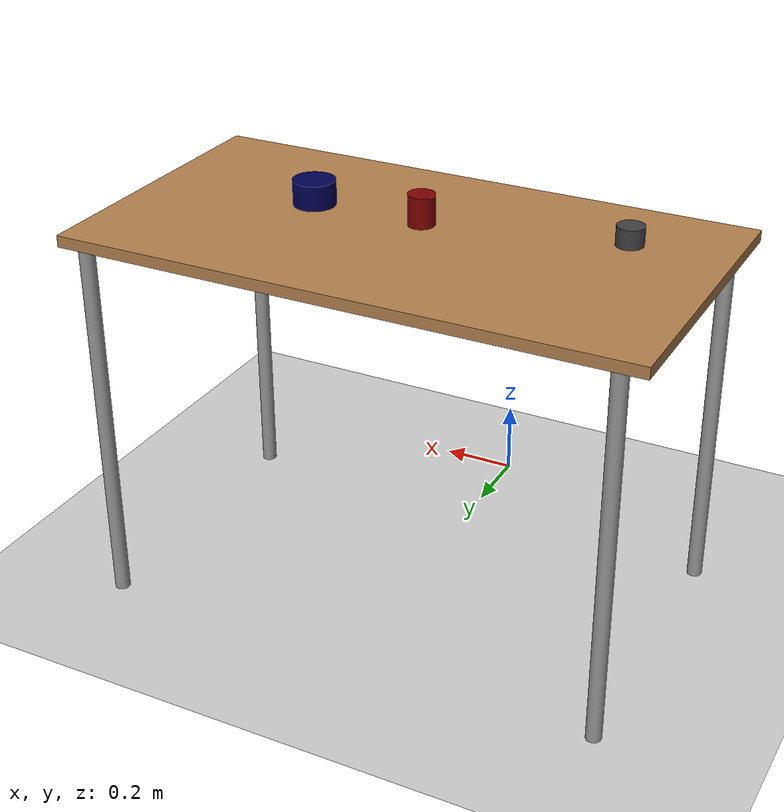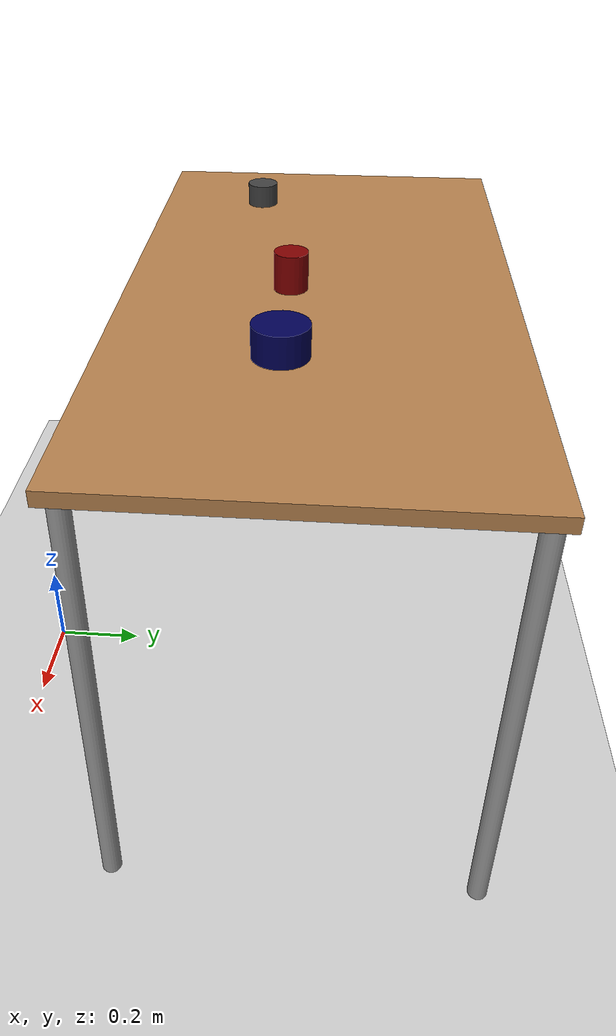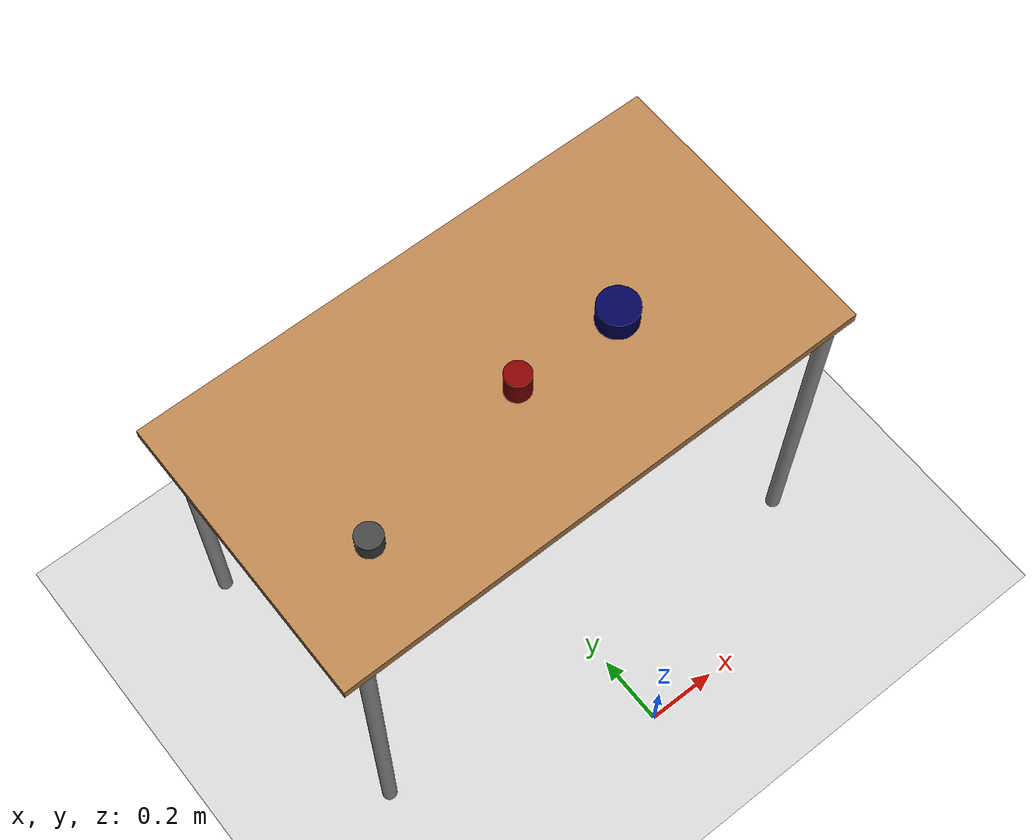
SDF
<sdf version="1.6">
 <world name="default">
  <light name="sun" type="directional">
   <pose>0 0 10 0 -0 0</pose>
   <diffuse>0.8 0.8 0.8 1</diffuse>
   <specular>0.2 0.2 0.2 1</specular>
   <attenuation>
    <range>1000</range>
    <constant>0.9</constant>
    <linear>0.01</linear>
    <quadratic>0.001</quadratic>
   </attenuation>
   <direction>-0.5 0.1 -0.9</direction>
  </light>
  <model name="ground_plane">
   <static>1</static>
   <link name="link">
    <collision name="collision">
     <geometry><plane><normal>0 0 1</normal><size>100 100</size></plane></geometry>
     <surface>
      <contact><collide_bitmask>65535</collide_bitmask></contact>
      <friction><ode><mu>100</mu><mu2>50</mu2></ode></friction>
     </surface>
    </collision>
    <visual name="visual">
     <cast_shadows>0</cast_shadows>
     <geometry><plane><normal>0 0 1</normal><size>100 100</size></plane></geometry>
     <material>
      <script><uri>file://media/materials/scripts/gazebo.material</uri><name>Gazebo/Grey</name></script>
     </material>
    </visual>
   </link>
  </model>
  <gravity>0 0 -9.8</gravity>
  <magnetic_field>6e-06 2.3e-05 -4.2e-05</magnetic_field>
  <atmosphere type="adiabatic"/>
  <physics name="default_physics" default="0" type="ode">
   <max_step_size>0.001</max_step_size>
   <real_time_factor>1</real_time_factor>
   <real_time_update_rate>1000</real_time_update_rate>
  </physics>
  <scene><ambient>0.4 0.4 0.4 1</ambient><background>0.7 0.7 0.7 1</background><shadows>1</shadows></scene>
  <audio><device>default</device></audio>
  <spherical_coordinates>
   <surface_model>EARTH_WGS84</surface_model>
   <latitude_deg>0</latitude_deg>
   <longitude_deg>0</longitude_deg>
   <elevation>0</elevation>
   <heading_deg>0</heading_deg>
  </spherical_coordinates>
  <model name="table">
   <static>1</static>
   <link name="link">
    <collision name="surface">
     <pose>0 0 1 0 -0 0</pose>
     <geometry><box><size>1.5 0.8 0.03</size></box></geometry>
     <surface><friction><ode><mu>0.6</mu><mu2>0.6</mu2></ode></friction></surface>
    </collision>
    <visual name="visual1">
     <pose>0 0 1 0 -0 0</pose>
     <geometry><box><size>1.5 0.8 0.03</size></box></geometry>
     <material>
      <script><uri>file://media/materials/scripts/gazebo.material</uri><name>Gazebo/Wood</name></script>
     </material>
    </visual>
    <collision name="front_left_leg">
     <pose>0.68 0.38 0.5 0 -0 0</pose>
     <geometry><cylinder><radius>0.02</radius><length>1</length></cylinder></geometry>
    </collision>
    <visual name="front_left_leg">
     <pose>0.68 0.38 0.5 0 -0 0</pose>
     <geometry><cylinder><radius>0.02</radius><length>1</length></cylinder></geometry>
     <material>
      <script><uri>file://media/materials/scripts/gazebo.material</uri><name>Gazebo/Grey</name></script>
     </material>
    </visual>
    <collision name="front_right_leg">
     <pose>0.68 -0.38 0.5 0 -0 0</pose>
     <geometry><cylinder><radius>0.02</radius><length>1</length></cylinder></geometry>
    </collision>
    <visual name="front_right_leg">
     <pose>0.68 -0.38 0.5 0 -0 0</pose>
     <geometry><cylinder><radius>0.02</radius><length>1</length></cylinder></geometry>
     <material>
      <script><uri>file://media/materials/scripts/gazebo.material</uri><name>Gazebo/Grey</name></script>
     </material>
    </visual>
    <collision name="back_right_leg">
     <pose>-0.68 -0.38 0.5 0 -0 0</pose>
     <geometry><cylinder><radius>0.02</radius><length>1</length></cylinder></geometry>
    </collision>
    <visual name="back_right_leg">
     <pose>-0.68 -0.38 0.5 0 -0 0</pose>
     <geometry><cylinder><radius>0.02</radius><length>1</length></cylinder></geometry>
     <material>
      <script><uri>file://media/materials/scripts/gazebo.material</uri><name>Gazebo/Grey</name></script>
     </material>
    </visual>
    <collision name="back_left_leg">
     <pose>-0.68 0.38 0.5 0 -0 0</pose>
     <geometry><cylinder><radius>0.02</radius><length>1</length></cylinder></geometry>
    </collision>
    <visual name="back_left_leg">
     <pose>-0.68 0.38 0.5 0 -0 0</pose>
     <geometry><cylinder><radius>0.02</radius><length>1</length></cylinder></geometry>
     <material>
      <script><uri>file://media/materials/scripts/gazebo.material</uri><name>Gazebo/Grey</name></script>
     </material>
    </visual>
   </link>
   <pose>1.8e-05 0.659275 0 0 -0 0</pose>
  </model>
  <model name="shot_glass">
   <link name="link">
    <inertial>
     <mass>0.1</mass>
     <inertia>
      <ixx>5.763e-05</ixx>
      <ixy>0</ixy>
      <ixz>0</ixz>
      <iyy>6.331e-05</iyy>
      <iyz>0</iyz>
      <izz>6.119e-05</izz>
     </inertia>
    </inertial>
    <visual name="visual">
     <geometry><cylinder><radius>0.035</radius><length>0.05</length></cylinder></geometry>
     <material>
      <ambient>0.25 0.25 0.25 1</ambient>
      <shader type="vertex"><normal_map>__default__</normal_map></shader>
      <diffuse>0.25 0.25 0.25 1</diffuse>
      <specular>0.25 0.25 0.25 1</specular>
      <emissive>0 0 0 1</emissive>
     </material>
    </visual>
    <collision name="collision">
     <geometry><cylinder><radius>0.045</radius><length>0.05</length></cylinder></geometry>
     <surface>
      <friction>
       <ode><mu>5</mu><mu2>5</mu2><fdir1>0 0 0</fdir1><slip1>0</slip1><slip2>0</slip2></ode>
       <torsional>
        <coefficient>1</coefficient>
        <patch_radius>0</patch_radius>
        <surface_radius>0</surface_radius>
        <use_patch_radius>1</use_patch_radius>
        <ode><slip>0</slip></ode>
       </torsional>
      </friction>
      <bounce><restitution_coefficient>0</restitution_coefficient><threshold>1e+06</threshold></bounce>
      <contact>
       <collide_without_contact>0</collide_without_contact>
       <collide_without_contact_bitmask>1</collide_without_contact_bitmask>
       <collide_bitmask>1</collide_bitmask>
       <ode>
        <soft_cfm>0</soft_cfm>
        <soft_erp>0.2</soft_erp>
        <kp>1e+13</kp>
        <kd>1</kd>
        <max_vel>0.01</max_vel>
        <min_depth>0</min_depth>
       </ode>
       <bullet>
        <split_impulse>1</split_impulse>
        <split_impulse_penetration_threshold>-0.01</split_impulse_penetration_threshold>
        <soft_cfm>0</soft_cfm>
        <soft_erp>0.2</soft_erp>
        <kp>1e+13</kp>
        <kd>1</kd>
       </bullet>
      </contact>
     </surface>
    </collision>
   </link>
   <static>0</static>
   <pose>-0.499999 0.5 1.04493 -1e-06 -2e-05 1e-06</pose>
  </model>
  <model name="container">
   <link name="link">
    <inertial>
     <mass>0.1</mass>
     <inertia>
      <ixx>5.763e-05</ixx>
      <ixy>0</ixy>
      <ixz>0</ixz>
      <iyy>6.331e-05</iyy>
      <iyz>0</iyz>
      <izz>6.119e-05</izz>
     </inertia>
    </inertial>
    <visual name="visual">
     <geometry><cylinder><radius>0.035</radius><length>0.1</length></cylinder></geometry>
     <material>
      <ambient>0.7 0 0 1</ambient>
      <shader type="vertex"><normal_map>__default__</normal_map></shader>
      <diffuse>0.5 0 0 1</diffuse>
      <specular>0.01 0.01 0.01 1</specular>
      <emissive>0 0 0 1</emissive>
     </material>
    </visual>
    <collision name="collision">
     <geometry><cylinder><radius>0.035</radius><length>0.1</length></cylinder></geometry>
     <surface>
      <friction>
       <ode><mu>5</mu><mu2>5</mu2><fdir1>0 0 0</fdir1><slip1>0</slip1><slip2>0</slip2></ode>
       <torsional>
        <coefficient>1</coefficient>
        <patch_radius>0</patch_radius>
        <surface_radius>0</surface_radius>
        <use_patch_radius>1</use_patch_radius>
        <ode><slip>0</slip></ode>
       </torsional>
      </friction>
      <bounce><restitution_coefficient>0</restitution_coefficient><threshold>1e+06</threshold></bounce>
      <contact>
       <collide_without_contact>0</collide_without_contact>
       <collide_without_contact_bitmask>1</collide_without_contact_bitmask>
       <collide_bitmask>1</collide_bitmask>
       <ode>
        <soft_cfm>0</soft_cfm>
        <soft_erp>0.2</soft_erp>
        <kp>1e+13</kp>
        <kd>1</kd>
        <max_vel>0.01</max_vel>
        <min_depth>0</min_depth>
       </ode>
       <bullet>
        <split_impulse>1</split_impulse>
        <split_impulse_penetration_threshold>-0.01</split_impulse_penetration_threshold>
        <soft_cfm>0</soft_cfm>
        <soft_erp>0.2</soft_erp>
        <kp>1e+13</kp>
        <kd>1</kd>
       </bullet>
      </contact>
     </surface>
    </collision>
   </link>
   <static>0</static>
   <pose>0 0.6 1.04493 -1e-06 -2e-05 1e-06</pose>
  </model>
  <model name="cup">
   <link name="link">
    <inertial>
     <mass>0.1</mass>
     <inertia>
      <ixx>5.763e-05</ixx>
      <ixy>0</ixy>
      <ixz>0</ixz>
      <iyy>6.331e-05</iyy>
      <iyz>0</iyz>
      <izz>6.119e-05</izz>
     </inertia>
    </inertial>
    <visual name="visual">
     <geometry><cylinder><radius>0.055</radius><length>0.07</length></cylinder></geometry>
     <material>
      <ambient>0 0 0.33 1</ambient>
      <shader type="vertex"><normal_map>__default__</normal_map></shader>
      <diffuse>0 0 0.33 1</diffuse>
      <specular>0.01 0.01 0.33 1</specular>
      <emissive>0 0 0 1</emissive>
     </material>
    </visual>
    <collision name="collision">
     <geometry><cylinder><radius>0.055</radius><length>0.07</length></cylinder></geometry>
     <surface>
      <friction>
       <ode><mu>5</mu><mu2>5</mu2><fdir1>0 0 0</fdir1><slip1>0</slip1><slip2>0</slip2></ode>
       <torsional>
        <coefficient>1</coefficient>
        <patch_radius>0</patch_radius>
        <surface_radius>0</surface_radius>
        <use_patch_radius>1</use_patch_radius>
        <ode><slip>0</slip></ode>
       </torsional>
      </friction>
      <bounce><restitution_coefficient>0</restitution_coefficient><threshold>1e+06</threshold></bounce>
      <contact>
       <collide_without_contact>0</collide_without_contact>
       <collide_without_contact_bitmask>1</collide_without_contact_bitmask>
       <collide_bitmask>1</collide_bitmask>
       <ode>
        <soft_cfm>0</soft_cfm>
        <soft_erp>0.2</soft_erp>
        <kp>1e+13</kp>
        <kd>1</kd>
        <max_vel>0.01</max_vel>
        <min_depth>0</min_depth>
       </ode>
       <bullet>
        <split_impulse>1</split_impulse>
        <split_impulse_penetration_threshold>-0.01</split_impulse_penetration_threshold>
        <soft_cfm>0</soft_cfm>
        <soft_erp>0.2</soft_erp>
        <kp>1e+13</kp>
        <kd>1</kd>
       </bullet>
      </contact>
     </surface>
    </collision>
   </link>
   <static>0</static>
   <pose>0.3 0.6 1.04493 -1e-06 -2e-05 1e-06</pose>
  </model>
 </world>
</sdf>
